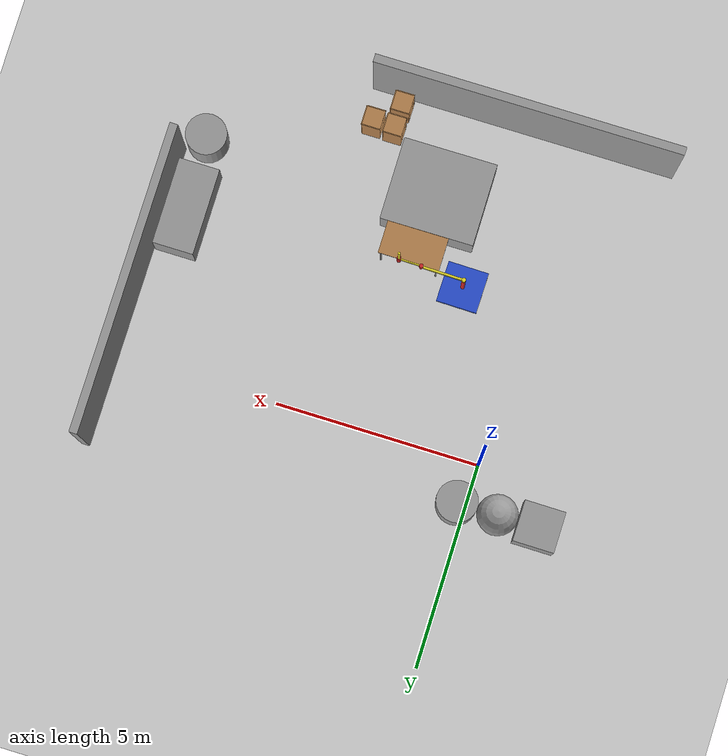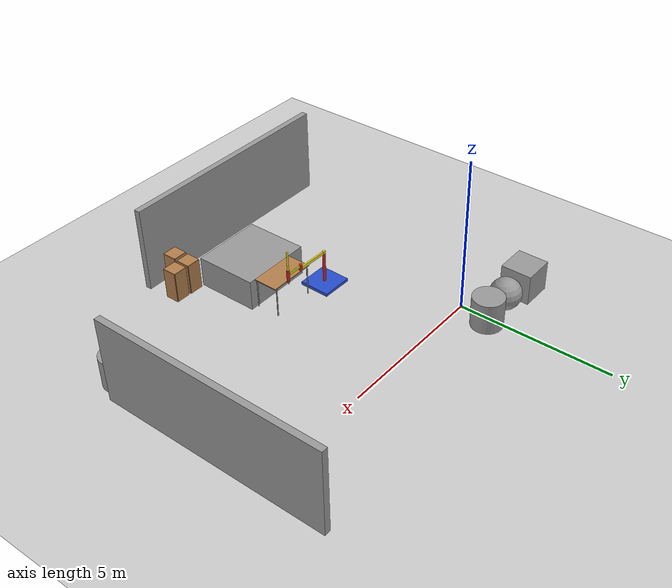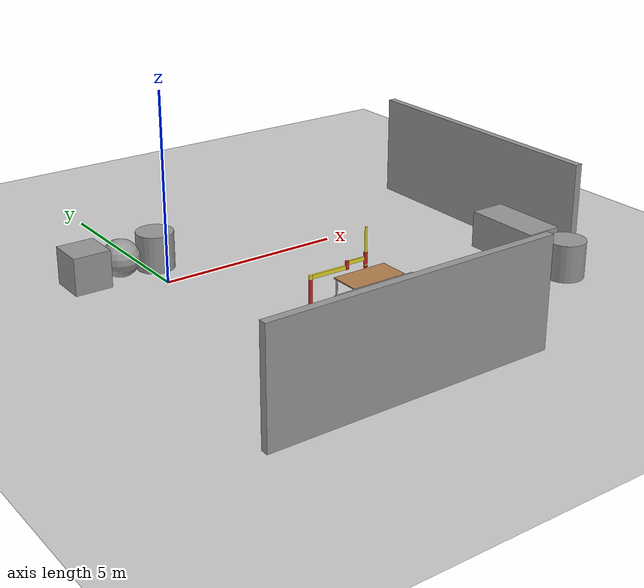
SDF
<sdf version="1.6">
 <world name="default">
  <light name="sun" type="directional">
   <pose>0 0 10 0 -0 0</pose>
   <diffuse>0.8 0.8 0.8 1</diffuse>
   <specular>0.2 0.2 0.2 1</specular>
   <attenuation>
    <range>1000</range>
    <constant>0.9</constant>
    <linear>0.01</linear>
    <quadratic>0.001</quadratic>
   </attenuation>
   <direction>-0.5 0.1 -0.9</direction>
  </light>
  <model name="ground_plane">
   <static>1</static>
   <link name="link">
    <collision name="collision">
     <geometry><plane><normal>0 0 1</normal><size>100 100</size></plane></geometry>
     <surface>
      <contact><collide_bitmask>65535</collide_bitmask></contact>
      <friction><ode><mu>100</mu><mu2>50</mu2></ode></friction>
     </surface>
    </collision>
    <visual name="visual">
     <cast_shadows>0</cast_shadows>
     <geometry><plane><normal>0 0 1</normal><size>100 100</size></plane></geometry>
     <material>
      <script><uri>file://media/materials/scripts/gazebo.material</uri><name>Gazebo/Grey</name></script>
     </material>
    </visual>
   </link>
  </model>
  <gravity>0 0 -9.8</gravity>
  <magnetic_field>6e-06 2.3e-05 -4.2e-05</magnetic_field>
  <atmosphere type="adiabatic"/>
  <physics name="default_physics" default="0" type="ode">
   <max_step_size>0.001</max_step_size>
   <real_time_factor>1</real_time_factor>
   <real_time_update_rate>1000</real_time_update_rate>
  </physics>
  <scene><ambient>0.4 0.4 0.4 1</ambient><background>0.7 0.7 0.7 1</background><shadows>1</shadows></scene>
  <spherical_coordinates>
   <surface_model>EARTH_WGS84</surface_model>
   <latitude_deg>0</latitude_deg>
   <longitude_deg>0</longitude_deg>
   <elevation>0</elevation>
   <heading_deg>0</heading_deg>
  </spherical_coordinates>
  <model name="unit_box">
   <pose>-1.77675 1.03309 0.51 0 0 -0.004748</pose>
   <link name="link">
    <inertial>
     <mass>1</mass>
     <inertia>
      <ixx>0.166667</ixx>
      <ixy>0</ixy>
      <ixz>0</ixz>
      <iyy>0.166667</iyy>
      <iyz>0</iyz>
      <izz>0.166667</izz>
     </inertia>
    </inertial>
    <collision name="collision"><geometry><box><size>1 1 1</size></box></geometry></collision>
    <visual name="visual">
     <geometry><box><size>1 1 1</size></box></geometry>
     <material>
      <script><name>Gazebo/Grey</name><uri>file://media/materials/scripts/gazebo.material</uri></script>
     </material>
    </visual>
   </link>
  </model>
  <model name="unit_sphere">
   <pose>-0.775038 1.02519 0.51 0.10044 -0.010547 -0.014674</pose>
   <link name="link">
    <inertial>
     <mass>1</mass>
     <inertia><ixx>0.1</ixx><ixy>0</ixy><ixz>0</ixz><iyy>0.1</iyy><iyz>0</iyz><izz>0.1</izz></inertia>
    </inertial>
    <collision name="collision"><geometry><sphere><radius>0.5</radius></sphere></geometry></collision>
    <visual name="visual">
     <geometry><sphere><radius>0.5</radius></sphere></geometry>
     <material>
      <script><name>Gazebo/Grey</name><uri>file://media/materials/scripts/gazebo.material</uri></script>
     </material>
    </visual>
   </link>
  </model>
  <model name="unit_cylinder">
   <pose>0.225289 1.03551 0.509991 0 -0 0.004127</pose>
   <link name="link">
    <inertial>
     <mass>1</mass>
     <inertia><ixx>0.145833</ixx><ixy>0</ixy><ixz>0</ixz><iyy>0.145833</iyy><iyz>0</iyz><izz>0.125</izz></inertia>
    </inertial>
    <collision name="collision">
     <geometry><cylinder><radius>0.5</radius><length>1</length></cylinder></geometry>
    </collision>
    <visual name="visual">
     <geometry><cylinder><radius>0.5</radius><length>1</length></cylinder></geometry>
     <material>
      <script><name>Gazebo/Grey</name><uri>file://media/materials/scripts/gazebo.material</uri></script>
     </material>
    </visual>
   </link>
  </model>
  <model name="table">
   <static>1</static>
   <link name="link">
    <collision name="surface">
     <pose>0 0 1 0 -0 0</pose>
     <geometry><box><size>1.5 0.8 0.03</size></box></geometry>
     <surface><friction><ode><mu>0.6</mu><mu2>0.6</mu2></ode></friction></surface>
    </collision>
    <visual name="visual1">
     <pose>0 0 1 0 -0 0</pose>
     <geometry><box><size>1.5 0.8 0.03</size></box></geometry>
     <material>
      <script><uri>file://media/materials/scripts/gazebo.material</uri><name>Gazebo/Wood</name></script>
     </material>
    </visual>
    <collision name="front_left_leg">
     <pose>0.68 0.38 0.5 0 -0 0</pose>
     <geometry><cylinder><radius>0.02</radius><length>1</length></cylinder></geometry>
    </collision>
    <visual name="front_left_leg">
     <pose>0.68 0.38 0.5 0 -0 0</pose>
     <geometry><cylinder><radius>0.02</radius><length>1</length></cylinder></geometry>
     <material>
      <script><uri>file://media/materials/scripts/gazebo.material</uri><name>Gazebo/Grey</name></script>
     </material>
    </visual>
    <collision name="front_right_leg">
     <pose>0.68 -0.38 0.5 0 -0 0</pose>
     <geometry><cylinder><radius>0.02</radius><length>1</length></cylinder></geometry>
    </collision>
    <visual name="front_right_leg">
     <pose>0.68 -0.38 0.5 0 -0 0</pose>
     <geometry><cylinder><radius>0.02</radius><length>1</length></cylinder></geometry>
     <material>
      <script><uri>file://media/materials/scripts/gazebo.material</uri><name>Gazebo/Grey</name></script>
     </material>
    </visual>
    <collision name="back_right_leg">
     <pose>-0.68 -0.38 0.5 0 -0 0</pose>
     <geometry><cylinder><radius>0.02</radius><length>1</length></cylinder></geometry>
    </collision>
    <visual name="back_right_leg">
     <pose>-0.68 -0.38 0.5 0 -0 0</pose>
     <geometry><cylinder><radius>0.02</radius><length>1</length></cylinder></geometry>
     <material>
      <script><uri>file://media/materials/scripts/gazebo.material</uri><name>Gazebo/Grey</name></script>
     </material>
    </visual>
    <collision name="back_left_leg">
     <pose>-0.68 0.38 0.5 0 -0 0</pose>
     <geometry><cylinder><radius>0.02</radius><length>1</length></cylinder></geometry>
    </collision>
    <visual name="back_left_leg">
     <pose>-0.68 0.38 0.5 0 -0 0</pose>
     <geometry><cylinder><radius>0.02</radius><length>1</length></cylinder></geometry>
     <material>
      <script><uri>file://media/materials/scripts/gazebo.material</uri><name>Gazebo/Grey</name></script>
     </material>
    </visual>
   </link>
   <pose>2.96472 -4.43487 0 0 -0 0</pose>
  </model>
  <model name="simple_arm">
   <link name="arm_base">
    <inertial>
     <pose>0 0 0.00099 0 -0 0</pose>
     <inertia><ixx>1.11</ixx><ixy>0</ixy><ixz>0</ixz><iyy>100.11</iyy><iyz>0</iyz><izz>1.01</izz></inertia>
     <mass>101</mass>
    </inertial>
    <collision name="arm_base_geom">
     <pose>0 0 0.05 0 -0 0</pose>
     <geometry><box><size>1 1 0.1</size></box></geometry>
    </collision>
    <visual name="arm_base_geom_visual">
     <pose>0 0 0.05 0 -0 0</pose>
     <geometry><box><size>1 1 0.1</size></box></geometry>
     <material>
      <script><uri>file://media/materials/scripts/gazebo.material</uri><name>Gazebo/Blue</name></script>
     </material>
    </visual>
    <collision name="arm_base_geom_arm_trunk">
     <pose>0 0 0.6 0 -0 0</pose>
     <geometry><cylinder><radius>0.05</radius><length>1</length></cylinder></geometry>
    </collision>
    <visual name="arm_base_geom_arm_trunk_visual">
     <pose>0 0 0.6 0 -0 0</pose>
     <geometry><cylinder><radius>0.05</radius><length>1</length></cylinder></geometry>
     <material>
      <script><uri>file://media/materials/scripts/gazebo.material</uri><name>Gazebo/Red</name></script>
     </material>
    </visual>
   </link>
   <link name="arm_shoulder_pan">
    <pose>0 0 1.1 0 -0 0</pose>
    <inertial>
     <pose>0.045455 0 0 0 -0 0</pose>
     <inertia><ixx>0.011</ixx><ixy>0</ixy><ixz>0</ixz><iyy>0.0225</iyy><iyz>0</iyz><izz>0.0135</izz></inertia>
     <mass>1.1</mass>
    </inertial>
    <collision name="arm_shoulder_pan_geom">
     <pose>0 0 0.05 0 -0 0</pose>
     <geometry><cylinder><radius>0.05</radius><length>0.1</length></cylinder></geometry>
    </collision>
    <visual name="arm_shoulder_pan_geom_visual">
     <pose>0 0 0.05 0 -0 0</pose>
     <geometry><cylinder><radius>0.05</radius><length>0.1</length></cylinder></geometry>
     <material>
      <script><uri>file://media/materials/scripts/gazebo.material</uri><name>Gazebo/Yellow</name></script>
     </material>
    </visual>
    <collision name="arm_shoulder_pan_geom_arm_shoulder">
     <pose>0.55 0 0.05 0 -0 0</pose>
     <geometry><box><size>1 0.05 0.1</size></box></geometry>
    </collision>
    <visual name="arm_shoulder_pan_geom_arm_shoulder_visual">
     <pose>0.55 0 0.05 0 -0 0</pose>
     <geometry><box><size>1 0.05 0.1</size></box></geometry>
     <material>
      <script><uri>file://media/materials/scripts/gazebo.material</uri><name>Gazebo/Yellow</name></script>
     </material>
    </visual>
   </link>
   <link name="arm_elbow_pan">
    <pose>1.05 0 1.1 0 -0 0</pose>
    <inertial>
     <pose>0.0875 0 0.083333 0 -0 0</pose>
     <inertia>
      <ixx>0.031</ixx>
      <ixy>0</ixy>
      <ixz>0.005</ixz>
      <iyy>0.07275</iyy>
      <iyz>0</iyz>
      <izz>0.04475</izz>
     </inertia>
     <mass>1.2</mass>
    </inertial>
    <collision name="arm_elbow_pan_geom">
     <pose>0 0 0.1 0 -0 0</pose>
     <geometry><cylinder><radius>0.05</radius><length>0.2</length></cylinder></geometry>
    </collision>
    <visual name="arm_elbow_pan_geom_visual">
     <pose>0 0 0.1 0 -0 0</pose>
     <geometry><cylinder><radius>0.05</radius><length>0.2</length></cylinder></geometry>
     <material>
      <script><uri>file://media/materials/scripts/gazebo.material</uri><name>Gazebo/Red</name></script>
     </material>
    </visual>
    <collision name="arm_elbow_pan_geom_arm_elbow">
     <pose>0.3 0 0.15 0 -0 0</pose>
     <geometry><box><size>0.5 0.03 0.1</size></box></geometry>
    </collision>
    <visual name="arm_elbow_pan_geom_arm_elbow_visual">
     <pose>0.3 0 0.15 0 -0 0</pose>
     <geometry><box><size>0.5 0.03 0.1</size></box></geometry>
     <material>
      <script><uri>file://media/materials/scripts/gazebo.material</uri><name>Gazebo/Yellow</name></script>
     </material>
    </visual>
    <collision name="arm_elbow_pan_geom_arm_wrist">
     <pose>0.55 0 0.15 0 -0 0</pose>
     <geometry><cylinder><radius>0.05</radius><length>0.3</length></cylinder></geometry>
    </collision>
    <visual name="arm_elbow_pan_geom_arm_wrist_visual">
     <pose>0.55 0 0.15 0 -0 0</pose>
     <geometry><cylinder><radius>0.05</radius><length>0.3</length></cylinder></geometry>
     <material>
      <script><uri>file://media/materials/scripts/gazebo.material</uri><name>Gazebo/Red</name></script>
     </material>
    </visual>
   </link>
   <link name="arm_wrist_lift">
    <pose>1.6 0 1.05 0 -0 0</pose>
    <inertial>
     <inertia><ixx>0.01</ixx><ixy>0</ixy><ixz>0</ixz><iyy>0.01</iyy><iyz>0</iyz><izz>0.001</izz></inertia>
     <mass>0.1</mass>
    </inertial>
    <collision name="arm_wrist_lift_geom">
     <pose>0 0 0.5 0 -0 0</pose>
     <geometry><cylinder><radius>0.03</radius><length>1</length></cylinder></geometry>
    </collision>
    <visual name="arm_wrist_lift_geom_visual">
     <pose>0 0 0.5 0 -0 0</pose>
     <geometry><cylinder><radius>0.03</radius><length>1</length></cylinder></geometry>
     <material>
      <script><uri>file://media/materials/scripts/gazebo.material</uri><name>Gazebo/Yellow</name></script>
     </material>
    </visual>
   </link>
   <link name="arm_wrist_roll">
    <pose>1.6 0 1 0 -0 0</pose>
    <inertial>
     <inertia><ixx>0.01</ixx><ixy>0</ixy><ixz>0</ixz><iyy>0.01</iyy><iyz>0</iyz><izz>0.001</izz></inertia>
     <mass>0.1</mass>
    </inertial>
    <collision name="arm_wrist_roll_geom">
     <pose>0 0 0.025 0 -0 0</pose>
     <geometry><cylinder><radius>0.05</radius><length>0.05</length></cylinder></geometry>
    </collision>
    <visual name="arm_wrist_roll_geom_visual">
     <pose>0 0 0.025 0 -0 0</pose>
     <geometry><cylinder><radius>0.05</radius><length>0.05</length></cylinder></geometry>
     <material>
      <script><uri>file://media/materials/scripts/gazebo.material</uri><name>Gazebo/Red</name></script>
     </material>
    </visual>
   </link>
   <joint name="arm_shoulder_pan_joint" type="revolute">
    <parent>arm_base</parent>
    <child>arm_shoulder_pan</child>
    <axis>
     <dynamics>
      <damping>1</damping>
      <friction>0</friction>
      <spring_reference>0</spring_reference>
      <spring_stiffness>0</spring_stiffness>
     </dynamics>
     <xyz>0 0 1</xyz>
     <use_parent_model_frame>1</use_parent_model_frame>
     <limit><lower>-1e+16</lower><upper>1e+16</upper></limit>
    </axis>
   </joint>
   <joint name="arm_elbow_pan_joint" type="revolute">
    <parent>arm_shoulder_pan</parent>
    <child>arm_elbow_pan</child>
    <axis>
     <dynamics>
      <damping>1</damping>
      <friction>0</friction>
      <spring_reference>0</spring_reference>
      <spring_stiffness>0</spring_stiffness>
     </dynamics>
     <xyz>0 0 1</xyz>
     <use_parent_model_frame>1</use_parent_model_frame>
     <limit><lower>-1e+16</lower><upper>1e+16</upper></limit>
    </axis>
   </joint>
   <joint name="arm_wrist_lift_joint" type="prismatic">
    <parent>arm_elbow_pan</parent>
    <child>arm_wrist_lift</child>
    <axis>
     <dynamics>
      <damping>1</damping>
      <friction>0</friction>
      <spring_reference>0</spring_reference>
      <spring_stiffness>0</spring_stiffness>
     </dynamics>
     <limit><lower>-0.8</lower><upper>0.1</upper></limit>
     <xyz>0 0 1</xyz>
     <use_parent_model_frame>1</use_parent_model_frame>
    </axis>
   </joint>
   <joint name="arm_wrist_roll_joint" type="revolute">
    <parent>arm_wrist_lift</parent>
    <child>arm_wrist_roll</child>
    <axis>
     <dynamics>
      <damping>1</damping>
      <friction>0</friction>
      <spring_reference>0</spring_reference>
      <spring_stiffness>0</spring_stiffness>
     </dynamics>
     <limit><lower>-2.99999</lower><upper>2.99999</upper></limit>
     <xyz>0 0 1</xyz>
     <use_parent_model_frame>1</use_parent_model_frame>
    </axis>
   </joint>
   <pose>1.58423 -3.96992 0.009946 0.00011 -1e-06 -0.013554</pose>
  </model>
  <model name="grey_wall">
   <static>1</static>
   <link name="link">
    <pose>0 0 1.4 0 -0 0</pose>
    <collision name="collision"><geometry><box><size>7.5 0.2 2.8</size></box></geometry></collision>
    <visual name="visual">
     <cast_shadows>0</cast_shadows>
     <geometry><box><size>7.5 0.2 2.8</size></box></geometry>
     <material>
      <script>
       <uri>model://grey_wall/materials/scripts</uri>
       <uri>model://grey_wall/materials/textures</uri>
       <name>vrc/grey_wall</name>
      </script>
     </material>
    </visual>
   </link>
   <pose>9.01685 -1.495 0 0 0 -1.57494</pose>
  </model>
  <model name="unit_box_0">
   <pose>2.7727 -5.85085 0.509984 1.6e-05 -0 0.002417</pose>
   <link name="link">
    <inertial>
     <mass>1</mass>
     <inertia>
      <ixx>0.166667</ixx>
      <ixy>0</ixy>
      <ixz>0</ixz>
      <iyy>0.166667</iyy>
      <iyz>0</iyz>
      <izz>0.166667</izz>
     </inertia>
    </inertial>
    <collision name="collision"><geometry><box><size>2.29559 2.02353 1</size></box></geometry></collision>
    <visual name="visual">
     <geometry><box><size>2.29559 2.02353 1</size></box></geometry>
     <material>
      <script><name>Gazebo/Grey</name><uri>file://media/materials/scripts/gazebo.material</uri></script>
     </material>
    </visual>
   </link>
  </model>
  <model name="unit_box_1">
   <pose>8.37104 -3.76728 0.51 0 -0 5e-05</pose>
   <link name="link">
    <inertial>
     <mass>1</mass>
     <inertia>
      <ixx>0.166667</ixx>
      <ixy>0</ixy>
      <ixz>0</ixz>
      <iyy>0.166667</iyy>
      <iyz>0</iyz>
      <izz>0.166667</izz>
     </inertia>
    </inertial>
    <collision name="collision"><geometry><box><size>1 2.11813 1</size></box></geometry></collision>
    <visual name="visual">
     <geometry><box><size>1 2.11813 1</size></box></geometry>
     <material>
      <script><name>Gazebo/Grey</name><uri>file://media/materials/scripts/gazebo.material</uri></script>
     </material>
    </visual>
   </link>
  </model>
  <model name="unit_cylinder_0">
   <pose>8.43624 -5.5531 0.509991 0 -0 0.000228</pose>
   <link name="link">
    <inertial>
     <mass>1</mass>
     <inertia><ixx>0.145833</ixx><ixy>0</ixy><ixz>0</ixz><iyy>0.145833</iyy><iyz>0</iyz><izz>0.125</izz></inertia>
    </inertial>
    <collision name="collision">
     <geometry><cylinder><radius>0.5</radius><length>1</length></cylinder></geometry>
    </collision>
    <visual name="visual">
     <geometry><cylinder><radius>0.5</radius><length>1</length></cylinder></geometry>
     <material>
      <script><name>Gazebo/Grey</name><uri>file://media/materials/scripts/gazebo.material</uri></script>
     </material>
    </visual>
   </link>
  </model>
  <model name="grey_wall_0">
   <static>1</static>
   <link name="link">
    <pose>0 0 1.4 0 -0 0</pose>
    <collision name="collision"><geometry><box><size>7.5 0.2 2.8</size></box></geometry></collision>
    <visual name="visual">
     <cast_shadows>0</cast_shadows>
     <geometry><box><size>7.5 0.2 2.8</size></box></geometry>
     <material>
      <script>
       <uri>model://grey_wall/materials/scripts</uri>
       <uri>model://grey_wall/materials/textures</uri>
       <name>vrc/grey_wall</name>
      </script>
     </material>
    </visual>
   </link>
   <pose>1.29893 -8.07925 0 0 -0 0</pose>
  </model>
  <model name="cabinet">
   <static>1</static>
   <link name="cabinet_bottom_plate">
    <inertial>
     <pose>0 0 -1 0 -0 0</pose>
     <inertia><ixx>2.05</ixx><ixy>0</ixy><ixz>0</ixz><iyy>2.05</iyy><iyz>0</iyz><izz>2.05</izz></inertia>
     <mass>25</mass>
    </inertial>
    <collision name="cabinet_bottom_plate_geom">
     <pose>0 0 0.01 0 -0 0</pose>
     <geometry><box><size>0.45 0.45 0.02</size></box></geometry>
    </collision>
    <visual name="cabinet_bottom_plate_geom_visual">
     <pose>0 0 0.01 0 -0 0</pose>
     <geometry><box><size>0.45 0.45 0.02</size></box></geometry>
     <material>
      <script><uri>file://media/materials/scripts/gazebo.material</uri><name>Gazebo/Wood</name></script>
     </material>
    </visual>
    <collision name="cabinet_bottom_plate_geom_cabinet_back_plate">
     <pose>0.235 0 0.51 0 -0 0</pose>
     <geometry><box><size>0.02 0.45 1.02</size></box></geometry>
    </collision>
    <visual name="cabinet_bottom_plate_geom_cabinet_back_plate_visual">
     <pose>0.235 0 0.51 0 -0 0</pose>
     <geometry><box><size>0.02 0.45 1.02</size></box></geometry>
     <material>
      <script><uri>file://media/materials/scripts/gazebo.material</uri><name>Gazebo/Wood</name></script>
     </material>
    </visual>
    <collision name="cabinet_bottom_plate_geom_cabinet_left_plate">
     <pose>0 0.235 0.51 0 -0 0</pose>
     <geometry><box><size>0.45 0.02 1.02</size></box></geometry>
    </collision>
    <visual name="cabinet_bottom_plate_geom_cabinet_left_plate_visual">
     <pose>0 0.235 0.51 0 -0 0</pose>
     <geometry><box><size>0.45 0.02 1.02</size></box></geometry>
     <material>
      <script><uri>file://media/materials/scripts/gazebo.material</uri><name>Gazebo/Wood</name></script>
     </material>
    </visual>
    <collision name="cabinet_bottom_plate_geom_cabinet_middle_plate">
     <pose>0 0 0.51 0 -0 0</pose>
     <geometry><box><size>0.45 0.45 0.02</size></box></geometry>
    </collision>
    <visual name="cabinet_bottom_plate_geom_cabinet_middle_plate_visual">
     <pose>0 0 0.51 0 -0 0</pose>
     <geometry><box><size>0.45 0.45 0.02</size></box></geometry>
     <material>
      <script><uri>file://media/materials/scripts/gazebo.material</uri><name>Gazebo/Wood</name></script>
     </material>
    </visual>
    <collision name="cabinet_bottom_plate_geom_cabinet_right_plate">
     <pose>0 -0.235 0.51 0 -0 0</pose>
     <geometry><box><size>0.45 0.02 1.02</size></box></geometry>
    </collision>
    <visual name="cabinet_bottom_plate_geom_cabinet_right_plate_visual">
     <pose>0 -0.235 0.51 0 -0 0</pose>
     <geometry><box><size>0.45 0.02 1.02</size></box></geometry>
     <material>
      <script><uri>file://media/materials/scripts/gazebo.material</uri><name>Gazebo/Wood</name></script>
     </material>
    </visual>
    <collision name="cabinet_bottom_plate_geom_cabinet_top_plate">
     <pose>0 0 1.01 0 -0 0</pose>
     <geometry><box><size>0.45 0.45 0.02</size></box></geometry>
    </collision>
    <visual name="cabinet_bottom_plate_geom_cabinet_top_plate_visual">
     <pose>0 0 1.01 0 -0 0</pose>
     <geometry><box><size>0.45 0.45 0.02</size></box></geometry>
     <material>
      <script><uri>file://media/materials/scripts/gazebo.material</uri><name>Gazebo/Wood</name></script>
     </material>
    </visual>
   </link>
   <pose>4.21061 -7.65627 0 0 -0 0</pose>
  </model>
  <model name="cabinet_clone">
   <static>1</static>
   <link name="cabinet_bottom_plate">
    <inertial>
     <pose>0 0 -1 0 -0 0</pose>
     <inertia><ixx>2.05</ixx><ixy>0</ixy><ixz>0</ixz><iyy>2.05</iyy><iyz>0</iyz><izz>2.05</izz></inertia>
     <mass>25</mass>
    </inertial>
    <collision name="cabinet_bottom_plate_geom">
     <pose>0 0 0.01 0 -0 0</pose>
     <geometry><box><size>0.45 0.45 0.02</size></box></geometry>
    </collision>
    <visual name="cabinet_bottom_plate_geom_visual">
     <pose>0 0 0.01 0 -0 0</pose>
     <geometry><box><size>0.45 0.45 0.02</size></box></geometry>
     <material>
      <script><uri>file://media/materials/scripts/gazebo.material</uri><name>Gazebo/Wood</name></script>
     </material>
    </visual>
    <collision name="cabinet_bottom_plate_geom_cabinet_back_plate">
     <pose>0.235 0 0.51 0 -0 0</pose>
     <geometry><box><size>0.02 0.45 1.02</size></box></geometry>
    </collision>
    <visual name="cabinet_bottom_plate_geom_cabinet_back_plate_visual">
     <pose>0.235 0 0.51 0 -0 0</pose>
     <geometry><box><size>0.02 0.45 1.02</size></box></geometry>
     <material>
      <script><uri>file://media/materials/scripts/gazebo.material</uri><name>Gazebo/Wood</name></script>
     </material>
    </visual>
    <collision name="cabinet_bottom_plate_geom_cabinet_left_plate">
     <pose>0 0.235 0.51 0 -0 0</pose>
     <geometry><box><size>0.45 0.02 1.02</size></box></geometry>
    </collision>
    <visual name="cabinet_bottom_plate_geom_cabinet_left_plate_visual">
     <pose>0 0.235 0.51 0 -0 0</pose>
     <geometry><box><size>0.45 0.02 1.02</size></box></geometry>
     <material>
      <script><uri>file://media/materials/scripts/gazebo.material</uri><name>Gazebo/Wood</name></script>
     </material>
    </visual>
    <collision name="cabinet_bottom_plate_geom_cabinet_middle_plate">
     <pose>0 0 0.51 0 -0 0</pose>
     <geometry><box><size>0.45 0.45 0.02</size></box></geometry>
    </collision>
    <visual name="cabinet_bottom_plate_geom_cabinet_middle_plate_visual">
     <pose>0 0 0.51 0 -0 0</pose>
     <geometry><box><size>0.45 0.45 0.02</size></box></geometry>
     <material>
      <script><uri>file://media/materials/scripts/gazebo.material</uri><name>Gazebo/Wood</name></script>
     </material>
    </visual>
    <collision name="cabinet_bottom_plate_geom_cabinet_right_plate">
     <pose>0 -0.235 0.51 0 -0 0</pose>
     <geometry><box><size>0.45 0.02 1.02</size></box></geometry>
    </collision>
    <visual name="cabinet_bottom_plate_geom_cabinet_right_plate_visual">
     <pose>0 -0.235 0.51 0 -0 0</pose>
     <geometry><box><size>0.45 0.02 1.02</size></box></geometry>
     <material>
      <script><uri>file://media/materials/scripts/gazebo.material</uri><name>Gazebo/Wood</name></script>
     </material>
    </visual>
    <collision name="cabinet_bottom_plate_geom_cabinet_top_plate">
     <pose>0 0 1.01 0 -0 0</pose>
     <geometry><box><size>0.45 0.45 0.02</size></box></geometry>
    </collision>
    <visual name="cabinet_bottom_plate_geom_cabinet_top_plate_visual">
     <pose>0 0 1.01 0 -0 0</pose>
     <geometry><box><size>0.45 0.45 0.02</size></box></geometry>
     <material>
      <script><uri>file://media/materials/scripts/gazebo.material</uri><name>Gazebo/Wood</name></script>
     </material>
    </visual>
   </link>
   <pose>4.23027 -7.07884 0 0 -0 0</pose>
  </model>
  <model name="cabinet_clone_0">
   <static>1</static>
   <link name="cabinet_bottom_plate">
    <inertial>
     <pose>0 0 -1 0 -0 0</pose>
     <inertia><ixx>2.05</ixx><ixy>0</ixy><ixz>0</ixz><iyy>2.05</iyy><iyz>0</iyz><izz>2.05</izz></inertia>
     <mass>25</mass>
    </inertial>
    <collision name="cabinet_bottom_plate_geom">
     <pose>0 0 0.01 0 -0 0</pose>
     <geometry><box><size>0.45 0.45 0.02</size></box></geometry>
    </collision>
    <visual name="cabinet_bottom_plate_geom_visual">
     <pose>0 0 0.01 0 -0 0</pose>
     <geometry><box><size>0.45 0.45 0.02</size></box></geometry>
     <material>
      <script><uri>file://media/materials/scripts/gazebo.material</uri><name>Gazebo/Wood</name></script>
     </material>
    </visual>
    <collision name="cabinet_bottom_plate_geom_cabinet_back_plate">
     <pose>0.235 0 0.51 0 -0 0</pose>
     <geometry><box><size>0.02 0.45 1.02</size></box></geometry>
    </collision>
    <visual name="cabinet_bottom_plate_geom_cabinet_back_plate_visual">
     <pose>0.235 0 0.51 0 -0 0</pose>
     <geometry><box><size>0.02 0.45 1.02</size></box></geometry>
     <material>
      <script><uri>file://media/materials/scripts/gazebo.material</uri><name>Gazebo/Wood</name></script>
     </material>
    </visual>
    <collision name="cabinet_bottom_plate_geom_cabinet_left_plate">
     <pose>0 0.235 0.51 0 -0 0</pose>
     <geometry><box><size>0.45 0.02 1.02</size></box></geometry>
    </collision>
    <visual name="cabinet_bottom_plate_geom_cabinet_left_plate_visual">
     <pose>0 0.235 0.51 0 -0 0</pose>
     <geometry><box><size>0.45 0.02 1.02</size></box></geometry>
     <material>
      <script><uri>file://media/materials/scripts/gazebo.material</uri><name>Gazebo/Wood</name></script>
     </material>
    </visual>
    <collision name="cabinet_bottom_plate_geom_cabinet_middle_plate">
     <pose>0 0 0.51 0 -0 0</pose>
     <geometry><box><size>0.45 0.45 0.02</size></box></geometry>
    </collision>
    <visual name="cabinet_bottom_plate_geom_cabinet_middle_plate_visual">
     <pose>0 0 0.51 0 -0 0</pose>
     <geometry><box><size>0.45 0.45 0.02</size></box></geometry>
     <material>
      <script><uri>file://media/materials/scripts/gazebo.material</uri><name>Gazebo/Wood</name></script>
     </material>
    </visual>
    <collision name="cabinet_bottom_plate_geom_cabinet_right_plate">
     <pose>0 -0.235 0.51 0 -0 0</pose>
     <geometry><box><size>0.45 0.02 1.02</size></box></geometry>
    </collision>
    <visual name="cabinet_bottom_plate_geom_cabinet_right_plate_visual">
     <pose>0 -0.235 0.51 0 -0 0</pose>
     <geometry><box><size>0.45 0.02 1.02</size></box></geometry>
     <material>
      <script><uri>file://media/materials/scripts/gazebo.material</uri><name>Gazebo/Wood</name></script>
     </material>
    </visual>
    <collision name="cabinet_bottom_plate_geom_cabinet_top_plate">
     <pose>0 0 1.01 0 -0 0</pose>
     <geometry><box><size>0.45 0.45 0.02</size></box></geometry>
    </collision>
    <visual name="cabinet_bottom_plate_geom_cabinet_top_plate_visual">
     <pose>0 0 1.01 0 -0 0</pose>
     <geometry><box><size>0.45 0.45 0.02</size></box></geometry>
     <material>
      <script><uri>file://media/materials/scripts/gazebo.material</uri><name>Gazebo/Wood</name></script>
     </material>
    </visual>
   </link>
   <pose>4.76004 -7.09683 0 0 -0 0</pose>
  </model>
 </world>
</sdf>
